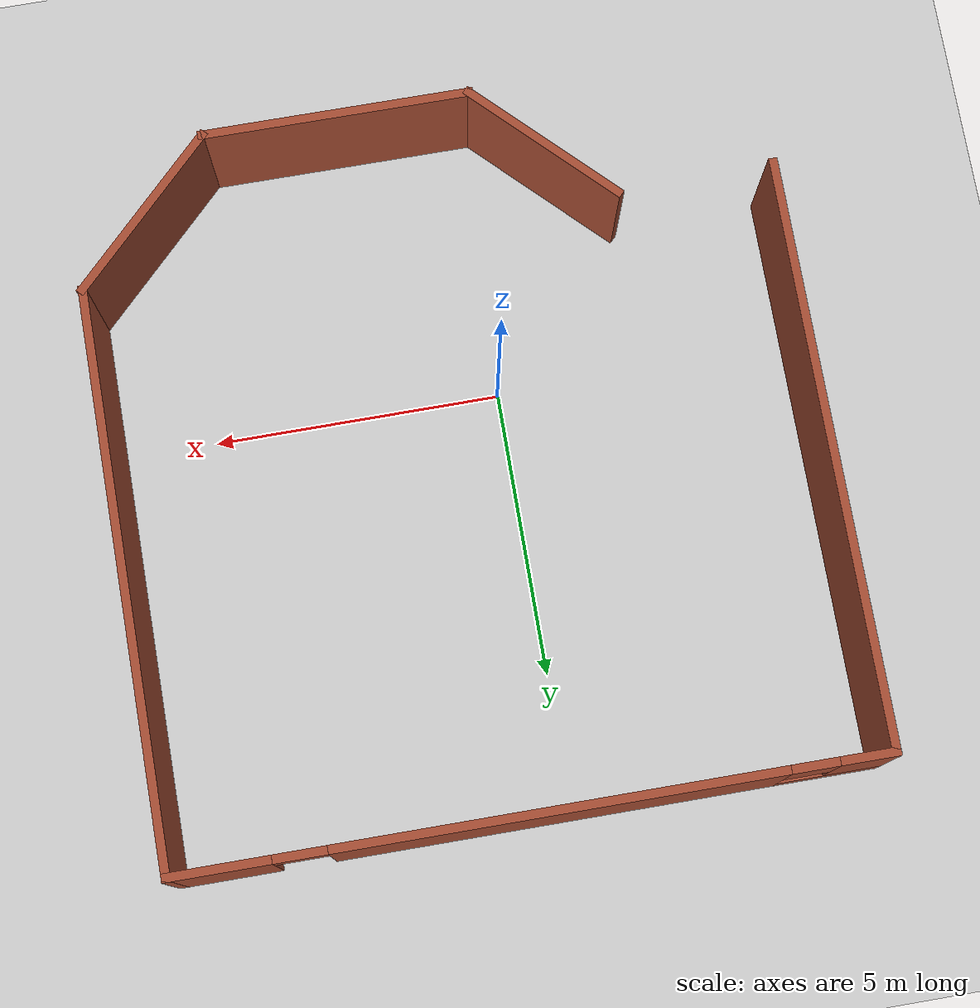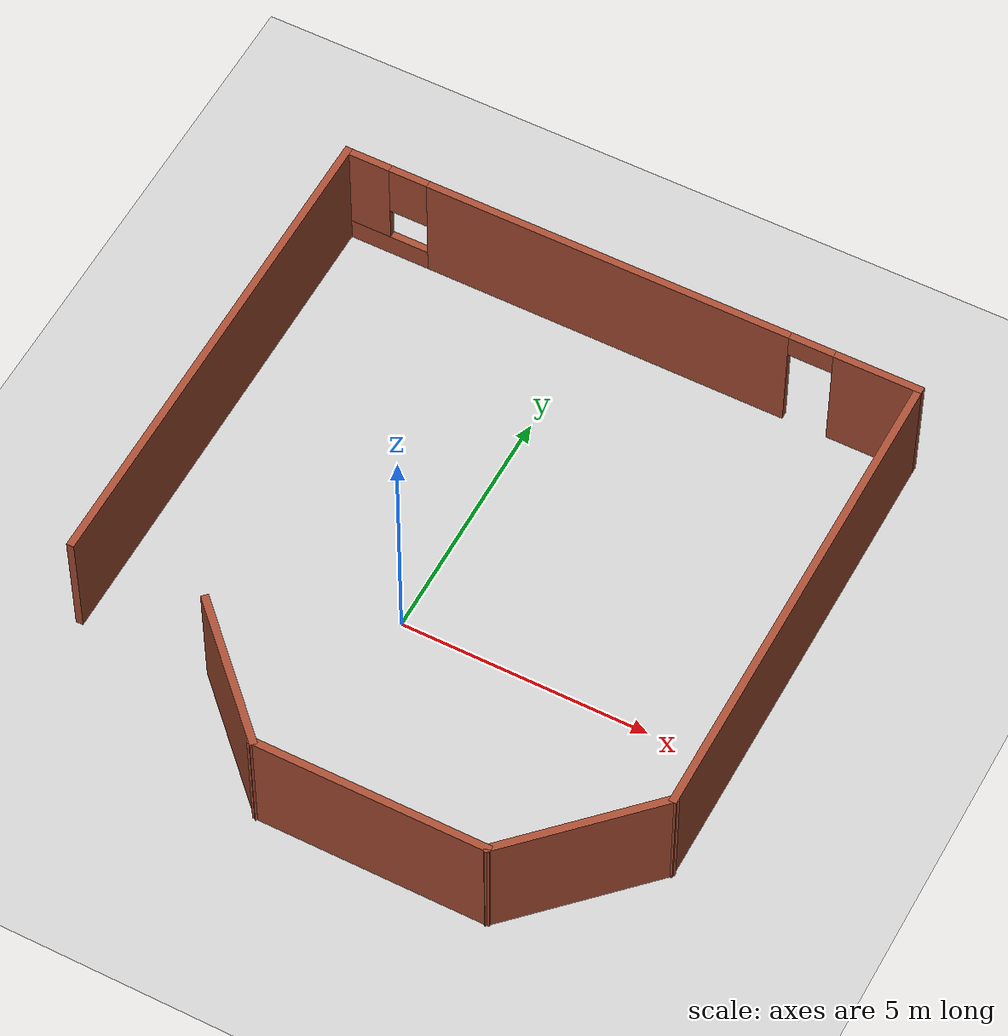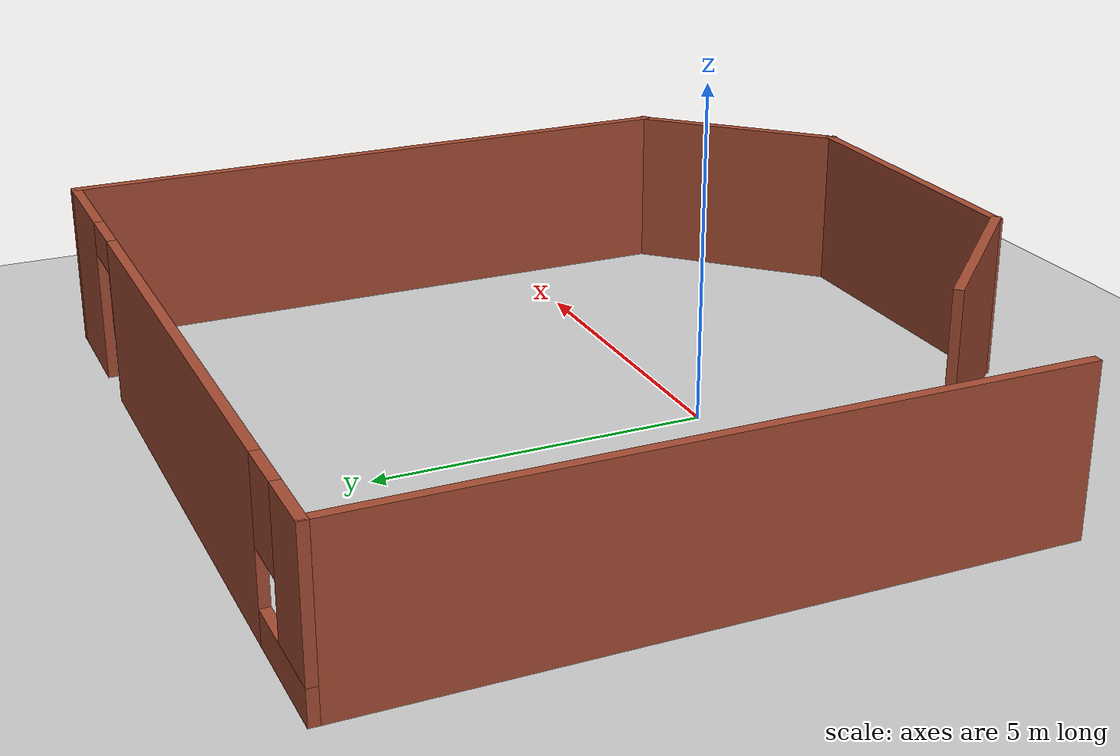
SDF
<sdf version="1.7">
 <world name="default">
  <light name="sun" type="directional">
   <pose>0 0 10 0 -0 0</pose>
   <diffuse>0.8 0.8 0.8 1</diffuse>
   <specular>0.2 0.2 0.2 1</specular>
   <attenuation>
    <range>1000</range>
    <constant>0.9</constant>
    <linear>0.01</linear>
    <quadratic>0.001</quadratic>
   </attenuation>
   <direction>-0.5 0.1 -0.9</direction>
   <spot><inner_angle>0</inner_angle><outer_angle>0</outer_angle><falloff>0</falloff></spot>
  </light>
  <model name="ground_plane">
   <static>1</static>
   <link name="link">
    <collision name="collision">
     <geometry><plane><normal>0 0 1</normal><size>100 100</size></plane></geometry>
     <surface>
      <contact><collide_bitmask>65535</collide_bitmask></contact>
      <friction><ode><mu>100</mu><mu2>50</mu2></ode></friction>
     </surface>
    </collision>
    <visual name="visual">
     <cast_shadows>0</cast_shadows>
     <geometry><plane><normal>0 0 1</normal><size>100 100</size></plane></geometry>
     <material>
      <script><uri>file://media/materials/scripts/gazebo.material</uri><name>Gazebo/Grey</name></script>
     </material>
    </visual>
   </link>
  </model>
  <gravity>0 0 -9.8</gravity>
  <magnetic_field>6e-06 2.3e-05 -4.2e-05</magnetic_field>
  <atmosphere type="adiabatic"/>
  <physics type="ode">
   <max_step_size>0.001</max_step_size>
   <real_time_factor>1</real_time_factor>
   <real_time_update_rate>1000</real_time_update_rate>
  </physics>
  <scene><ambient>0.4 0.4 0.4 1</ambient><background>0.7 0.7 0.7 1</background><shadows>1</shadows></scene>
  <audio><device>default</device></audio>
  <spherical_coordinates>
   <surface_model>EARTH_WGS84</surface_model>
   <latitude_deg>0</latitude_deg>
   <longitude_deg>0</longitude_deg>
   <elevation>0</elevation>
   <heading_deg>0</heading_deg>
  </spherical_coordinates>
  <model name="Untitled">
   <pose>0.761371 1.32184 0 0 -0 0</pose>
   <link name="Wall_1">
    <collision name="Wall_1_Collision">
     <geometry><box><size>3.25 0.15 2.5</size></box></geometry>
     <pose>0 0 1.25 0 -0 0</pose>
    </collision>
    <visual name="Wall_1_Visual">
     <pose>0 0 1.25 0 -0 0</pose>
     <geometry><box><size>3.25 0.15 2.5</size></box></geometry>
     <material>
      <script><uri>file://media/materials/scripts/gazebo.material</uri><name>Gazebo/Bricks</name></script>
      <ambient>1 1 1 1</ambient>
     </material>
     <meta><layer>0</layer></meta>
    </visual>
    <pose>-2.15536 -4.99786 0 0 -0 -0.785398</pose>
   </link>
   <link name="Wall_2">
    <collision name="Wall_2_Collision">
     <geometry><box><size>4.75 0.15 2.5</size></box></geometry>
     <pose>0 0 1.25 0 -0 0</pose>
    </collision>
    <visual name="Wall_2_Visual">
     <pose>0 0 1.25 0 -0 0</pose>
     <geometry><box><size>4.75 0.15 2.5</size></box></geometry>
     <material>
      <script><uri>file://media/materials/scripts/gazebo.material</uri><name>Gazebo/Bricks</name></script>
      <ambient>1 1 1 1</ambient>
     </material>
     <meta><layer>0</layer></meta>
    </visual>
    <pose>1.24066 -6.09387 0 0 -0 0</pose>
   </link>
   <link name="Wall_3">
    <collision name="Wall_3_Collision">
     <geometry><box><size>3.5 0.15 2.5</size></box></geometry>
     <pose>0 0 1.25 0 -0 0</pose>
    </collision>
    <visual name="Wall_3_Visual">
     <pose>0 0 1.25 0 -0 0</pose>
     <geometry><box><size>3.5 0.15 2.5</size></box></geometry>
     <material>
      <script><uri>file://media/materials/scripts/gazebo.material</uri><name>Gazebo/Bricks</name></script>
      <ambient>1 1 1 1</ambient>
     </material>
     <meta><layer>0</layer></meta>
    </visual>
    <pose>4.72506 -4.90947 0 0 -0 0.785398</pose>
   </link>
   <link name="Wall_4">
    <collision name="Wall_4_Collision">
     <geometry><box><size>10 0.15 2.5</size></box></geometry>
     <pose>0 0 1.25 0 -0 0</pose>
    </collision>
    <visual name="Wall_4_Visual">
     <pose>0 0 1.25 0 -0 0</pose>
     <geometry><box><size>10 0.15 2.5</size></box></geometry>
     <material>
      <script><uri>file://media/materials/scripts/gazebo.material</uri><name>Gazebo/Bricks</name></script>
      <ambient>1 1 1 1</ambient>
     </material>
     <meta><layer>0</layer></meta>
    </visual>
    <pose>5.90947 1.19994 0 0 -0 1.5708</pose>
   </link>
   <link name="Wall_5">
    <pose>-0.015533 6.12494 0 0 -0 3.14159</pose>
    <visual name="Wall_5_Visual_0">
     <pose>-5.11118 0 1.25 0 -0 0</pose>
     <geometry><box><size>1.77763 0.15 2.5</size></box></geometry>
     <material>
      <script><uri>file://media/materials/scripts/gazebo.material</uri><name>Gazebo/Bricks</name></script>
      <ambient>1 1 1 1</ambient>
     </material>
     <meta><layer>0</layer></meta>
    </visual>
    <collision name="Wall_5_Collision_0">
     <geometry><box><size>1.77763 0.15 2.5</size></box></geometry>
     <pose>-5.11118 0 1.25 0 -0 0</pose>
    </collision>
    <visual name="Wall_5_Visual_1">
     <pose>0.439785 0 1.25 0 -0 0</pose>
     <geometry><box><size>7.52431 0.15 2.5</size></box></geometry>
     <material>
      <script><uri>file://media/materials/scripts/gazebo.material</uri><name>Gazebo/Bricks</name></script>
      <ambient>1 1 1 1</ambient>
     </material>
     <meta><layer>0</layer></meta>
    </visual>
    <collision name="Wall_5_Collision_1">
     <geometry><box><size>7.52431 0.15 2.5</size></box></geometry>
     <pose>0.439785 0 1.25 0 -0 0</pose>
    </collision>
    <visual name="Wall_5_Visual_2">
     <pose>5.10097 0 0.25 0 -0 0</pose>
     <geometry><box><size>1.79806 0.15 0.5</size></box></geometry>
     <material>
      <script><uri>file://media/materials/scripts/gazebo.material</uri><name>Gazebo/Bricks</name></script>
      <ambient>1 1 1 1</ambient>
     </material>
     <meta><layer>0</layer></meta>
    </visual>
    <collision name="Wall_5_Collision_2">
     <geometry><box><size>1.79806 0.15 0.5</size></box></geometry>
     <pose>5.10097 0 0.25 0 -0 0</pose>
    </collision>
    <visual name="Wall_5_Visual_3">
     <pose>5.50097 0 1.5 0 -0 0</pose>
     <geometry><box><size>0.998063 0.15 2</size></box></geometry>
     <material>
      <script><uri>file://media/materials/scripts/gazebo.material</uri><name>Gazebo/Bricks</name></script>
      <ambient>1 1 1 1</ambient>
     </material>
     <meta><layer>0</layer></meta>
    </visual>
    <collision name="Wall_5_Collision_3">
     <geometry><box><size>0.998063 0.15 2</size></box></geometry>
     <pose>5.50097 0 1.5 0 -0 0</pose>
    </collision>
    <visual name="Wall_5_Visual_4">
     <pose>4.60194 0 1.9 0 -0 0</pose>
     <geometry><box><size>0.8 0.15 1.2</size></box></geometry>
     <material>
      <script><uri>file://media/materials/scripts/gazebo.material</uri><name>Gazebo/Bricks</name></script>
      <ambient>1 1 1 1</ambient>
     </material>
     <meta><layer>0</layer></meta>
    </visual>
    <collision name="Wall_5_Collision_4">
     <geometry><box><size>0.8 0.15 1.2</size></box></geometry>
     <pose>4.60194 0 1.9 0 -0 0</pose>
    </collision>
    <visual name="Wall_5_Visual_5">
     <pose>-3.77237 0 2.25 0 -0 0</pose>
     <geometry><box><size>0.9 0.15 0.5</size></box></geometry>
     <material>
      <script><uri>file://media/materials/scripts/gazebo.material</uri><name>Gazebo/Bricks</name></script>
      <ambient>1 1 1 1</ambient>
     </material>
     <meta><layer>0</layer></meta>
    </visual>
    <collision name="Wall_5_Collision_5">
     <geometry><box><size>0.9 0.15 0.5</size></box></geometry>
     <pose>-3.77237 0 2.25 0 -0 0</pose>
    </collision>
   </link>
   <link name="Wall_6">
    <collision name="Wall_6_Collision">
     <geometry><box><size>10.25 0.15 2.5</size></box></geometry>
     <pose>0 0 1.25 0 -0 0</pose>
    </collision>
    <visual name="Wall_6_Visual">
     <pose>0 0 1.25 0 -0 0</pose>
     <geometry><box><size>10.25 0.15 2.5</size></box></geometry>
     <material>
      <script><uri>file://media/materials/scripts/gazebo.material</uri><name>Gazebo/Bricks</name></script>
      <ambient>1 1 1 1</ambient>
     </material>
     <meta><layer>0</layer></meta>
    </visual>
    <pose>-5.94053 1.07494 0 0 -0 -1.5708</pose>
   </link>
   <static>1</static>
  </model>
 </world>
</sdf>
